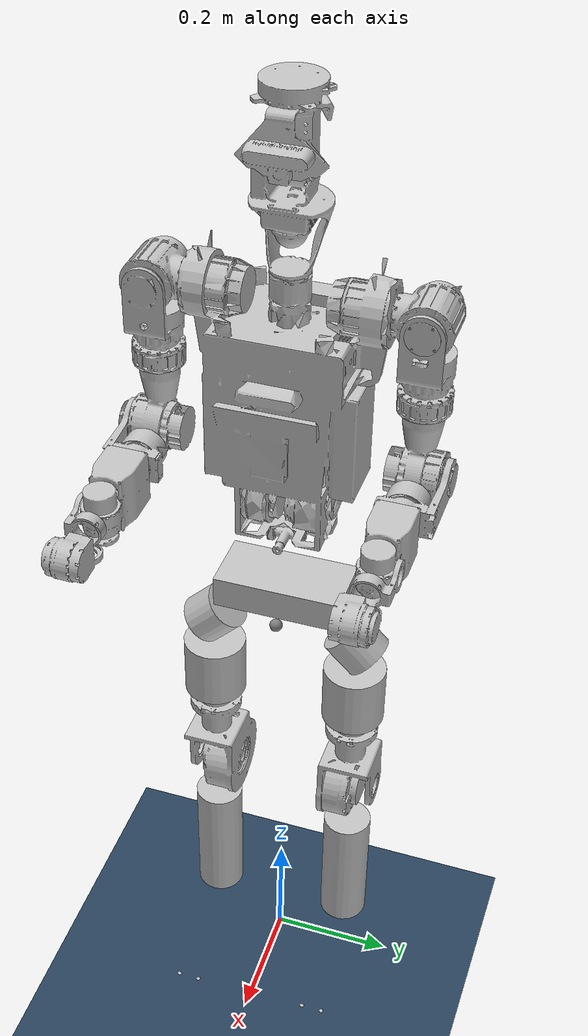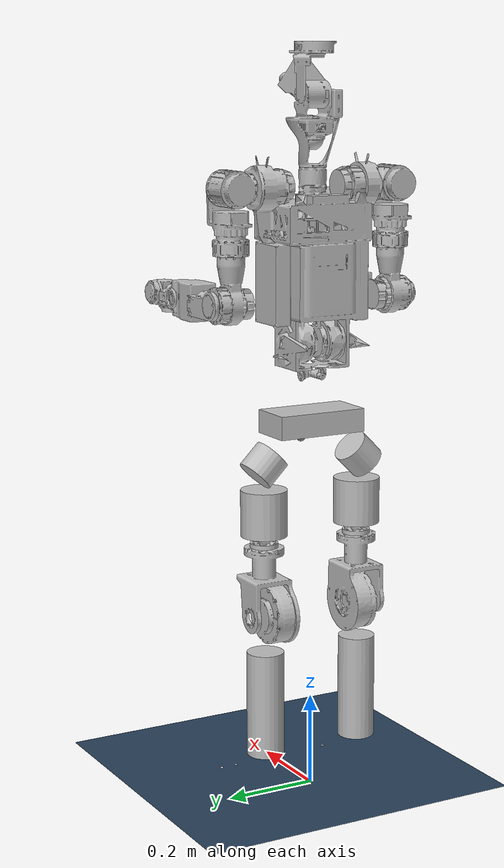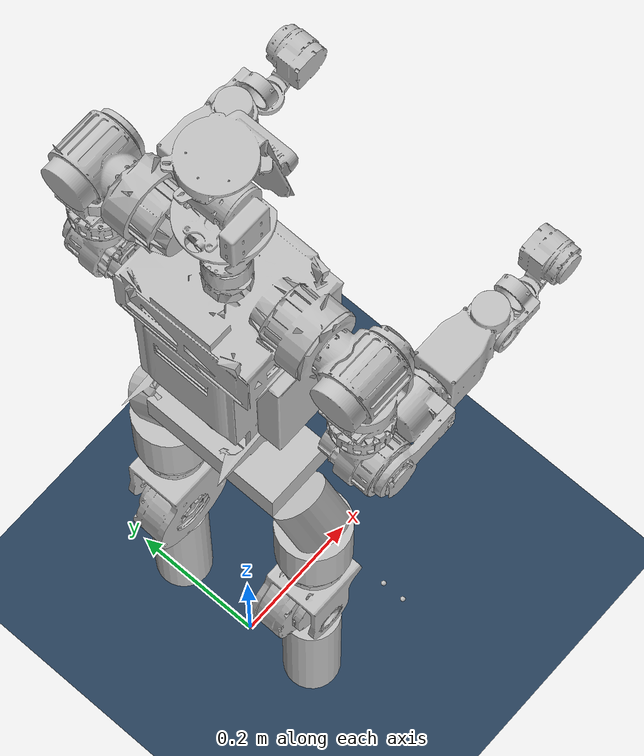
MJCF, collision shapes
<mujoco model="v1.1_Whole_u1.1_1216">
  <compiler angle="radian" meshdir="meshes_v11/"/>
  <default>
    <joint damping="0.001" armature="0.01" frictionloss="0.1"/>
  </default>

  <asset>
    <mesh name="base_link" file="base_link.STL"/>
    <mesh name="left_hip_pitch_link" file="left_hip_pitch_link.STL"/>
    <mesh name="left_hip_roll_link" file="left_hip_roll_link.STL"/>
    <mesh name="left_hip_yaw_link" file="left_hip_yaw_link.STL"/>
    <mesh name="left_knee_link" file="left_knee_link.STL"/>
    <mesh name="left_ankle_pitch_link" file="left_ankle_pitch_link.STL"/>
    <mesh name="left_ankle_roll_link" file="left_ankle_roll_link.STL"/>
    <mesh name="right_hip_pitch_link" file="right_hip_pitch_link.STL"/>
    <mesh name="right_hip_roll_link" file="right_hip_roll_link.STL"/>
    <mesh name="right_hip_yaw_link" file="right_hip_yaw_link.STL"/>
    <mesh name="right_knee_link" file="right_knee_link.STL"/>
    <mesh name="right_ankle_pitch_link" file="right_ankle_pitch_link.STL"/>
    <mesh name="right_ankle_roll_link" file="right_ankle_roll_link.STL"/>
    <mesh name="waist_yaw_link" file="waist_yaw_link.STL"/>
    <mesh name="waist_roll_link" file="waist_roll_link.STL"/>
    <mesh name="waist_pitch_link" file="waist_pitch_link.STL"/>
    <mesh name="head_yaw_link" file="head_yaw_link.STL"/>
    <mesh name="head_pitch_link" file="head_pitch_link.STL"/>
    <mesh name="left_shoulder_pitch_link" file="left_shoulder_pitch_link.STL"/>
    <mesh name="left_shoulder_roll_link" file="left_shoulder_roll_link.STL"/>
    <mesh name="left_shoulder_yaw_link" file="left_shoulder_yaw_link.STL"/>
    <mesh name="left_elbow_link" file="left_elbow_link.STL"/>
    <mesh name="left_wrist_roll_link" file="left_wrist_roll_link.STL"/>
    <mesh name="left_wrist_pitch_link" file="left_wrist_pitch_link.STL"/>
    <mesh name="left_wrist_yaw_link" file="left_wrist_yaw_link.STL"/>
    <mesh name="right_shoulder_pitch_link" file="right_shoulder_pitch_link.STL"/>
    <mesh name="right_shoulder_roll_link" file="right_shoulder_roll_link.STL"/>
    <mesh name="right_shoulder_yaw_link" file="right_shoulder_yaw_link.STL"/>
    <mesh name="right_elbow_link" file="right_elbow_link.STL"/>
    <mesh name="right_wrist_roll_link" file="right_wrist_roll_link.STL"/>
    <mesh name="right_wrist_pitch_link" file="right_wrist_pitch_link.STL"/>
    <mesh name="right_wrist_yaw_link" file="right_wrist_yaw_link.STL"/>
  </asset>

  <worldbody>
    <body name ="pelvis" pos="0 0 0.855">
      <inertial pos="-0.00011 0 -0.04947" quat="0.501261 0.501261 -0.498736 0.498736" mass="5.6115" diaginertia="0.0298001 0.0278199 0.01883"/>
      <joint name="floating_base_joint" type="free" limited="false" actuatorfrclimited="false"/>
      <geom type="mesh" contype="0" conaffinity="0" group="1" density="0" rgba="0.75294 0.75294 0.75294 1" mesh="base_link"/>
      <geom size="0.05 0.1 0.025" pos="0 0 -0.04" type="box" rgba="0.75294 0.75294 0.75294 1"/>
      <site name="imu_in_pelvis" size="0.01" pos="0.04525 0 -0.08339"/>
      <body name="left_hip_pitch_link" pos="0 0.11619 -0.12455" quat="0.923879 -0.382684 0 0">
        <inertial pos="0.0037 0.02157 -0.02824" quat="0.486733 0.868874 0.0896372 0.0106438" mass="2.2386" diaginertia="0.00516011 0.004417 0.00387289"/>
        <joint name="left_hip_pitch_joint" pos="0 0 0" axis="0 1 0" range="-2.6179 2.6179" actuatorfrcrange="-127.5 127.5"/>
        <geom type="mesh" contype="0" conaffinity="0" group="1" density="0" rgba="0.75294 0.75294 0.75294 1" mesh="left_hip_pitch_link"/>
        <geom size="0.04 0.03" quat="0.707388 0.706825 0 0" type="cylinder" rgba="0.75294 0.75294 0.75294 1"/>
        <body name="left_hip_roll_link" pos="-0.001 0.03 -0.03" quat="0.923879 0.382684 0 0">
          <inertial pos="0.0015 3e-05 -0.08423" quat="0.323453 0.628791 0.628791 0.323453" mass="1.4586" diaginertia="0.00447 0.00332581 0.00292419"/>
          <joint name="left_hip_roll_joint" pos="0 0 0" axis="1 0 0" range="-0.7854 2.3562" actuatorfrcrange="-127.5 127.5"/>
          <geom type="mesh" contype="0" conaffinity="0" group="1" density="0" rgba="0.75294 0.75294 0.75294 1" mesh="left_hip_roll_link"/>
          <geom size="0.05 0.05" pos="0 0 -0.06" type="cylinder" rgba="0.75294 0.75294 0.75294 1"/>
          <body name="left_hip_yaw_link" pos="0 0 -0.13">
            <inertial pos="-0.01065 -0.00925 -0.12007" quat="0.763801 -0.000253907 -0.082284 0.640185" mass="2.292" diaginertia="0.00965424 0.00874819 0.00286757"/>
            <joint name="left_hip_yaw_joint" pos="0 0 0" axis="0 0 1" range="-2.0944 2.0944" actuatorfrcrange="-76.5 76.5"/>
            <geom type="mesh" contype="0" conaffinity="0" group="1" density="0" rgba="0.75294 0.75294 0.75294 1" mesh="left_hip_yaw_link"/>
            <geom type="mesh" rgba="0.75294 0.75294 0.75294 1" mesh="left_hip_yaw_link"/>
            <body name="left_knee_link" pos="-0.015 0 -0.151">
              <inertial pos="0.00377 -0.00224 -0.13833" quat="0.999955 0.0019807 0.0092788 -0.000540902" mass="1.7311" diaginertia="0.00990278 0.00937012 0.0018171"/>
              <joint name="left_knee_joint" pos="0 0 0" axis="0 1 0" range="0 2.0944" actuatorfrcrange="-127.5 127.5"/>
              <geom type="mesh" contype="0" conaffinity="0" group="1" density="0" rgba="0.75294 0.75294 0.75294 1" mesh="left_knee_link"/>
              <geom size="0.04 0.115" pos="0.01 0 -0.2" type="cylinder" rgba="0.75294 0.75294 0.75294 1"/>
              <body name="left_ankle_pitch_link" pos="0.015 -0.002 -0.339">
                <inertial pos="-0.0023511 -0.0004785 -0.0069164" quat="0.707107 0.707107 0 0" mass="0.081064" diaginertia="2e-05 2e-05 1e-05"/>
                <joint name="left_ankle_pitch_joint" pos="0 0 0" axis="0 1 0" range="-0.9599 0.2618" actuatorfrcrange="-45.9 45.9"/>
                <geom type="mesh" contype="0" conaffinity="0" group="1" density="0" rgba="0.75294 0.75294 0.75294 1" mesh="left_ankle_pitch_link"/>
                <body name="left_ankle_roll_link" pos="0 0 -0.015">
                  <inertial pos="0.04469 -3.2121e-05 -0.035309" quat="0 0.67828 0 0.734803" mass="0.83613" diaginertia="0.00428404 0.00421 0.000515962"/>
                  <joint name="left_ankle_roll_joint" pos="0 0 0" axis="1 0 0" range="-0.1745 0.1745" actuatorfrcrange="-45.9 45.9"/>
                  <geom type="mesh" contype="0" conaffinity="0" group="1" density="0" rgba="0.75294 0.75294 0.75294 1" mesh="left_ankle_roll_link"/>
                  <geom name="left_foot1_collision" size="0.005" pos="-0.06 0.035 -0.06" rgba="0.75294 0.75294 0.75294 1"/>
                  <geom name="left_foot2_collision" size="0.005" pos="-0.06 -0.035 -0.06" rgba="0.75294 0.75294 0.75294 1"/>
                  <geom name="left_foot3_collision" size="0.005" pos="0.13 0.035 -0.06" rgba="0.75294 0.75294 0.75294 1"/>
                  <geom name="left_foot4_collision" size="0.005" pos="0.13 -0.035 -0.06" rgba="0.75294 0.75294 0.75294 1"/>
                  <geom name="left_foot5_collision" size="0.005" pos="0.17 0.018 -0.058" rgba="0.75294 0.75294 0.75294 1"/>
                  <geom name="left_foot6_collision" size="0.005" pos="0.17 -0.018 -0.058" rgba="0.75294 0.75294 0.75294 1"/>
                  <geom name="left_foot7_collision" size="0.005" pos="-0.035 0.035 -0.06" rgba="0.75294 0.75294 0.75294 1"/>
                  <geom name="left_foot8_collision" size="0.005" pos="-0.035 -0.035 -0.06" rgba="0.75294 0.75294 0.75294 1"/>
                  <geom name="left_foot9_collision" size="0.005" pos="0.06 0.035 -0.06" rgba="0.75294 0.75294 0.75294 1"/>
                  <geom name="left_foot10_collision" size="0.005" pos="0.06 -0.035 -0.06" rgba="0.75294 0.75294 0.75294 1"/>
                </body>
              </body>
            </body>
          </body>
        </body>
      </body>
      <body name="right_hip_pitch_link" pos="0 -0.11619 -0.12455" quat="0.923879 0.382684 0 0">
        <inertial pos="0.00753 -0.02164 -0.02818" quat="0.844271 0.513352 -0.0124264 -0.153365" mass="2.2312" diaginertia="0.00518704 0.00453609 0.00400687"/>
        <joint name="right_hip_pitch_joint" pos="0 0 0" axis="0 1 0" range="-2.6179 2.6179" actuatorfrcrange="-127.5 127.5"/>
        <geom type="mesh" contype="0" conaffinity="0" group="1" density="0" rgba="0.75294 0.75294 0.75294 1" mesh="right_hip_pitch_link"/>
        <geom size="0.04 0.03" quat="0.707388 0.706825 0 0" type="cylinder" rgba="0.75294 0.75294 0.75294 1"/>
        <body name="right_hip_roll_link" pos="0.0055 -0.03 -0.03" quat="0.923879 -0.382684 0 0">
          <inertial pos="0.00151 0 -0.08423" quat="0.331585 0.627369 0.622598 0.329895" mass="1.4586" diaginertia="0.00448007 0.00331924 0.00291069"/>
          <joint name="right_hip_roll_joint" pos="0 0 0" axis="1 0 0" range="-2.3562 0.7854" actuatorfrcrange="-127.5 127.5"/>
          <geom type="mesh" contype="0" conaffinity="0" group="1" density="0" rgba="0.75294 0.75294 0.75294 1" mesh="right_hip_roll_link"/>
          <geom size="0.05 0.05" pos="0 0 -0.06" type="cylinder" rgba="0.75294 0.75294 0.75294 1"/>
          <body name="right_hip_yaw_link" pos="0 0 -0.13">
            <inertial pos="-0.01065 0.00923 -0.11999" quat="0.640794 -0.0824896 -0.000401305 0.763269" mass="2.2898" diaginertia="0.00964412 0.00872874 0.00286714"/>
            <joint name="right_hip_yaw_joint" pos="0 0 0" axis="0 0 1" range="-2.0944 2.0944" actuatorfrcrange="-76.5 76.5"/>
            <geom type="mesh" contype="0" conaffinity="0" group="1" density="0" rgba="0.75294 0.75294 0.75294 1" mesh="right_hip_yaw_link"/>
            <geom type="mesh" rgba="0.75294 0.75294 0.75294 1" mesh="right_hip_yaw_link"/>
            <body name="right_knee_link" pos="-0.015 0 -0.151">
              <inertial pos="0.00355 -0.00047 -0.13985" quat="0.999943 -0.00185104 0.0104721 0.000619251" mass="1.7443" diaginertia="0.0104338 0.00991011 0.00183612"/>
              <joint name="right_knee_joint" pos="0 0 0" axis="0 1 0" range="0 2.0944" actuatorfrcrange="-127.5 127.5"/>
              <geom type="mesh" contype="0" conaffinity="0" group="1" density="0" rgba="0.75294 0.75294 0.75294 1" mesh="right_knee_link"/>
              <geom size="0.04 0.115" pos="0.01 0 -0.2" type="cylinder" rgba="0.75294 0.75294 0.75294 1"/>
              <body name="right_ankle_pitch_link" pos="0.015 -0.0007 -0.339">
                <inertial pos="-0.00281 0.00057 -0.008265" mass="0.06784" diaginertia="1e-05 1e-05 1e-05"/>
                <joint name="right_ankle_pitch_joint" pos="0 0 0" axis="0 1 0" range="-0.9599 0.2618" actuatorfrcrange="-45.9 45.9"/>
                <geom type="mesh" contype="0" conaffinity="0" group="1" density="0" rgba="0.75294 0.75294 0.75294 1" mesh="right_ankle_pitch_link"/>
                <body name="right_ankle_roll_link" pos="0 0 -0.015">
                  <inertial pos="0.044949 3.2367e-05 -0.03559" quat="0 0.679318 0 0.733844" mass="0.82952" diaginertia="0.00428241 0.0042 0.000507588"/>
                  <joint name="right_ankle_roll_joint" pos="0 0 0" axis="1 0 0" range="-0.1745 0.1745" actuatorfrcrange="-45.9 45.9"/>
                  <geom type="mesh" contype="0" conaffinity="0" group="1" density="0" rgba="0.75294 0.75294 0.75294 1" mesh="right_ankle_roll_link"/>
                  <geom name="right_foot1_collision" size="0.005" pos="-0.06 0.035 -0.06" rgba="0.75294 0.75294 0.75294 1"/>
                  <geom name="right_foot2_collision" size="0.005" pos="-0.06 -0.035 -0.06" rgba="0.75294 0.75294 0.75294 1"/>
                  <geom name="right_foot3_collision" size="0.005" pos="0.13 0.035 -0.06" rgba="0.75294 0.75294 0.75294 1"/>
                  <geom name="right_foot4_collision" size="0.005" pos="0.13 -0.035 -0.06" rgba="0.75294 0.75294 0.75294 1"/>
                  <geom name="right_foot5_collision" size="0.005" pos="0.17 0.018 -0.058" rgba="0.75294 0.75294 0.75294 1"/>
                  <geom name="right_foot6_collision" size="0.005" pos="0.17 -0.018 -0.058" rgba="0.75294 0.75294 0.75294 1"/>
                  <geom name="right_foot7_collision" size="0.005" pos="-0.035 0.035 -0.06" rgba="0.75294 0.75294 0.75294 1"/>
                  <geom name="right_foot8_collision" size="0.005" pos="-0.035 -0.035 -0.06" rgba="0.75294 0.75294 0.75294 1"/>
                  <geom name="right_foot9_collision" size="0.005" pos="0.06 0.035 -0.06" rgba="0.75294 0.75294 0.75294 1"/>
                  <geom name="right_foot10_collision" size="0.005" pos="0.06 -0.035 -0.06" rgba="0.75294 0.75294 0.75294 1"/>
                </body>
              </body>
            </body>
          </body>
        </body>
      </body>
      <body name="waist_yaw_link">
        <inertial pos="-0.025004 1.113e-06 0.041503" quat="0 0.672515 0 0.740083" mass="0.22089" diaginertia="0.000462877 0.00036 0.000147123"/>
        <joint name="waist_yaw_joint" pos="0 0 0" axis="0 0 1" range="-1.5708 1.5708" actuatorfrcrange="-76.5 76.5"/>
        <geom type="mesh" contype="0" conaffinity="0" group="1" density="0" rgba="0.75294 0.75294 0.75294 1" mesh="waist_yaw_link"/>
        <body name="waist_roll_link" pos="0 0 0.0615">
          <inertial pos="1.117e-08 2.7353e-09 -1.6907e-05" quat="0.5 0.5 -0.5 0.5" mass="0.044984" diaginertia="2e-05 1e-05 1e-05"/>
          <joint name="waist_roll_joint" pos="0 0 0" axis="1 0 0" range="-0.1745 0.1745" actuatorfrcrange="-51 51"/>
          <geom type="mesh" contype="0" conaffinity="0" group="1" density="0" rgba="0.75294 0.75294 0.75294 1" mesh="waist_roll_link"/>
          <geom type="mesh" rgba="0.75294 0.75294 0.75294 1" mesh="waist_roll_link"/>
          <body name="torso_link">
            <inertial pos="-0.0051034 0.000108452 0.256375" quat="0.999998 -0.00112233 0.000909489 -0.00115481" mass="17.2838" diaginertia="0.366906 0.319213 0.0998776"/>
            <joint name="waist_pitch_joint" pos="0 0 0" axis="0 1 0" range="-0.3491 0.6891" actuatorfrcrange="-51 51"/>
            <geom type="mesh" contype="0" conaffinity="0" group="1" density="0" rgba="0.75294 0.75294 0.75294 1" mesh="waist_pitch_link"/>
            <geom type="mesh" rgba="0.75294 0.75294 0.75294 1" mesh="waist_pitch_link"/>
            <geom pos="0 0 0.4375" type="mesh" contype="0" conaffinity="0" group="1" density="0" rgba="0.75294 0.75294 0.75294 1" mesh="head_yaw_link"/>
            <geom pos="0 0 0.4375" type="mesh" rgba="0.75294 0.75294 0.75294 1" mesh="head_yaw_link"/>
            <geom pos="0 0 0.5795" type="mesh" contype="0" conaffinity="0" group="1" density="0" rgba="0.75294 0.75294 0.75294 1" mesh="head_pitch_link"/>
            <geom pos="0 0 0.5795" type="mesh" rgba="0.75294 0.75294 0.75294 1" mesh="head_pitch_link"/>
            <body name="left_shoulder_pitch_link" pos="0 0.1446 0.3935">
              <inertial pos="0.00566 0.04522 0" quat="0.5 0.5 -0.5 0.5" mass="0.81088" diaginertia="0.0006 0.00057 0.00057"/>
              <joint name="left_shoulder_pitch_joint" pos="0 0 0" axis="0 1 0" range="-2.61799 2.61799" actuatorfrcrange="-68 68"/>
              <geom type="mesh" contype="0" conaffinity="0" group="1" density="0" rgba="0.75294 0.75294 0.75294 1" mesh="left_shoulder_pitch_link"/>
              <geom type="mesh" rgba="0.75294 0.75294 0.75294 1" mesh="left_shoulder_pitch_link"/>
              <body name="left_shoulder_roll_link" pos="0 0.047 0">
                <inertial pos="0.00416 6e-05 -0.0973" quat="0.688191 -0.16246 -0.16246 0.688191" mass="0.88662" diaginertia="0.00142 0.00141 0.00071"/>
                <joint name="left_shoulder_roll_joint" pos="0 0 0" axis="1 0 0" range="-0.08727 3.22832" actuatorfrcrange="-68 68"/>
                <geom type="mesh" contype="0" conaffinity="0" group="1" density="0" rgba="0.75294 0.75294 0.75294 1" mesh="left_shoulder_roll_link"/>
                <geom type="mesh" rgba="0.75294 0.75294 0.75294 1" mesh="left_shoulder_roll_link"/>
                <body name="left_shoulder_yaw_link" pos="-0.00072034 0 -0.1346">
                  <inertial pos="0.00627 0.00767 -0.09172" quat="0.839799 -0.021424 0.0801177 0.536525" mass="0.99118" diaginertia="0.00142862 0.00137919 0.000772188"/>
                  <joint name="left_shoulder_yaw_joint" pos="0 0 0" axis="0 0 1" range="-2.61799 2.61799" actuatorfrcrange="-68 68"/>
                  <geom type="mesh" contype="0" conaffinity="0" group="1" density="0" rgba="0.75294 0.75294 0.75294 1" mesh="left_shoulder_yaw_link"/>
                  <geom type="mesh" rgba="0.75294 0.75294 0.75294 1" mesh="left_shoulder_yaw_link"/>
                  <body name="left_elbow_link" pos="0.0075 0 -0.1019">
                    <inertial pos="0.08139 0.01068 -0.00849" quat="-0.0733141 0.637647 0.284259 0.7122" mass="0.53702" diaginertia="0.000746424 0.000683432 0.000250144"/>
                    <joint name="left_elbow_joint" pos="0 0 0" axis="0 1 0" range="-0.6981 3.3161" actuatorfrcrange="-68 68"/>
                    <geom type="mesh" contype="0" conaffinity="0" group="1" density="0" rgba="0.75294 0.75294 0.75294 1" mesh="left_elbow_link"/>
                    <geom type="mesh" rgba="0.75294 0.75294 0.75294 1" mesh="left_elbow_link"/>
                    <body name="left_wrist_roll_link" pos="0.1 0.0019 -0.009">
                      <inertial pos="0.08529 0.00512 -4e-05" quat="0.0551058 0.704956 -0.0551058 0.704956" mass="0.67942" diaginertia="0.00115 0.00107573 0.00042427"/>
                      <joint name="left_wrist_roll_joint" pos="0 0 0" axis="1 0 0" range="-2.61799 2.61799" actuatorfrcrange="-9.775 9.775"/>
                      <geom type="mesh" contype="0" conaffinity="0" group="1" density="0" rgba="0.75294 0.75294 0.75294 1" mesh="left_wrist_roll_link"/>
                      <geom type="mesh" rgba="0.75294 0.75294 0.75294 1" mesh="left_wrist_roll_link"/>
                      <body name="left_wrist_pitch_link" pos="0.1135 0 0">
                        <inertial pos="0.05147 0.00191 0.00656" quat="0.500001 0.0736261 0.747857 0.43045" mass="0.38948" diaginertia="0.000197146 0.000185535 0.000127318"/>
                        <joint name="left_wrist_pitch_joint" pos="0 0 0" axis="0 1 0" range="-1.5708 1.65806" actuatorfrcrange="-9.775 9.775"/>
                        <geom type="mesh" contype="0" conaffinity="0" group="1" density="0" rgba="0.75294 0.75294 0.75294 1" mesh="left_wrist_pitch_link"/>
                        <geom type="mesh" rgba="0.75294 0.75294 0.75294 1" mesh="left_wrist_pitch_link"/>
                        <body name="left_wrist_yaw_link" pos="0.054 0 0">
                          <inertial pos="0.11315 -0.00842 0.01032" quat="0.67036 0.316777 0.568741 0.356095" mass="0.54499" diaginertia="0.00187489 0.00149078 0.000564333"/>
                          <joint name="left_wrist_yaw_joint" pos="0 0 0" axis="0 0 1" range="-1.65806 1.48353" actuatorfrcrange="-9.775 9.775"/>
                          <geom type="mesh" contype="0" conaffinity="0" group="1" density="0" rgba="0.75294 0.75294 0.75294 1" mesh="left_wrist_yaw_link"/>
                          <geom type="mesh" rgba="0.75294 0.75294 0.75294 1" mesh="left_wrist_yaw_link"/>
                        </body>
                      </body>
                    </body>
                  </body>
                </body>
              </body>
            </body>
            <body name="right_shoulder_pitch_link" pos="0 -0.1446 0.3935">
              <inertial pos="0.00548 -0.04522 0" quat="0.5 0.5 -0.5 0.5" mass="0.80733" diaginertia="0.00059 0.00057 0.00056"/>
              <joint name="right_shoulder_pitch_joint" pos="0 0 0" axis="0 1 0" range="-2.61799 2.61799" actuatorfrcrange="-68 68"/>
              <geom type="mesh" contype="0" conaffinity="0" group="1" density="0" rgba="0.75294 0.75294 0.75294 1" mesh="right_shoulder_pitch_link"/>
              <geom type="mesh" rgba="0.75294 0.75294 0.75294 1" mesh="right_shoulder_pitch_link"/>
              <body name="right_shoulder_roll_link" pos="0 -0.047 0">
                <inertial pos="0.00427 -7e-05 -0.09705" quat="0.973249 0 -0.229753 0" mass="0.88811" diaginertia="0.00145 0.00145 0.0007"/>
                <joint name="right_shoulder_roll_joint" pos="0 0 0" axis="1 0 0" range="-3.22832 0.08727" actuatorfrcrange="-68 68"/>
                <geom type="mesh" contype="0" conaffinity="0" group="1" density="0" rgba="0.75294 0.75294 0.75294 1" mesh="right_shoulder_roll_link"/>
                <geom type="mesh" rgba="0.75294 0.75294 0.75294 1" mesh="right_shoulder_roll_link"/>
                <body name="right_shoulder_yaw_link" pos="-0.00072034 0 -0.1346">
                  <inertial pos="0.00626 -0.00767 -0.09172" quat="0.536525 0.0801177 -0.021424 0.839799" mass="0.99118" diaginertia="0.00142862 0.00137919 0.000772188"/>
                  <joint name="right_shoulder_yaw_joint" pos="0 0 0" axis="0 0 1" range="-2.61799 2.61799" actuatorfrcrange="-68 68"/>
                  <geom type="mesh" contype="0" conaffinity="0" group="1" density="0" rgba="0.75294 0.75294 0.75294 1" mesh="right_shoulder_yaw_link"/>
                  <geom type="mesh" rgba="0.75294 0.75294 0.75294 1" mesh="right_shoulder_yaw_link"/>
                  <body name="right_elbow_link" pos="0.0075 0 -0.1019">
                    <inertial pos="0.08085 -0.01096 -0.00843" quat="0.0798348 0.640239 -0.279565 0.71103" mass="0.54056" diaginertia="0.000776066 0.000709934 0.000254001"/>
                    <joint name="right_elbow_joint" pos="0 0 0" axis="0 1 0" range="-0.6981 3.3161" actuatorfrcrange="-68 68"/>
                    <geom type="mesh" contype="0" conaffinity="0" group="1" density="0" rgba="0.75294 0.75294 0.75294 1" mesh="right_elbow_link"/>
                    <geom type="mesh" rgba="0.75294 0.75294 0.75294 1" mesh="right_elbow_link"/>
                    <body name="right_wrist_roll_link" pos="0.1 -0.0019 -0.009">
                      <inertial pos="0.08528 -0.00514 -5e-05" quat="-0.0551058 0.704956 0.0551058 0.704956" mass="0.67942" diaginertia="0.00115 0.00107573 0.00042427"/>
                      <joint name="right_wrist_roll_joint" pos="0 0 0" axis="1 0 0" range="-2.61799 2.61799" actuatorfrcrange="-9.775 9.775"/>
                      <geom type="mesh" contype="0" conaffinity="0" group="1" density="0" rgba="0.75294 0.75294 0.75294 1" mesh="right_wrist_roll_link"/>
                      <geom type="mesh" rgba="0.75294 0.75294 0.75294 1" mesh="right_wrist_roll_link"/>
                      <body name="right_wrist_pitch_link" pos="0.1135 0 0">
                        <inertial pos="0.05147 -0.00191 0.00656" quat="0.43045 0.747857 0.0736261 0.500001" mass="0.38948" diaginertia="0.000197146 0.000185535 0.000127318"/>
                        <joint name="right_wrist_pitch_joint" pos="0 0 0" axis="0 1 0" range="-1.5708 1.65806" actuatorfrcrange="-9.775 9.775"/>
                        <geom type="mesh" contype="0" conaffinity="0" group="1" density="0" rgba="0.75294 0.75294 0.75294 1" mesh="right_wrist_pitch_link"/>
                        <geom type="mesh" rgba="0.75294 0.75294 0.75294 1" mesh="right_wrist_pitch_link"/>
                        <body name="right_wrist_yaw_link" pos="0.054 0 0">
                          <inertial pos="0.11316 0.00842 0.01033" quat="0.356095 0.568741 0.316777 0.67036" mass="0.54499" diaginertia="0.00187489 0.00149078 0.000564333"/>
                          <joint name="right_wrist_yaw_joint" pos="0 0 0" axis="0 0 1" range="-1.65806 1.48353" actuatorfrcrange="-9.775 9.775"/>
                          <geom type="mesh" contype="0" conaffinity="0" group="1" density="0" rgba="0.75294 0.75294 0.75294 1" mesh="right_wrist_yaw_link"/>
                          <geom type="mesh" rgba="0.75294 0.75294 0.75294 1" mesh="right_wrist_yaw_link"/>
                        </body>
                      </body>
                    </body>
                  </body>
                </body>
              </body>
            </body>
          </body>
        </body>
      </body>
    </body>
  </worldbody>
  <contact>
    <exclude body1="left_elbow_link" body2="left_wrist_pitch_link"/>
    <exclude body1="right_elbow_link" body2="right_wrist_pitch_link"/>
    <exclude body1="pelvis" body2="right_hip_roll_link"/>
    <exclude body1="pelvis" body2="left_hip_roll_link"/>
  </contact>
  <sensor>
    <gyro name="imu_ang_vel" site="imu_in_pelvis"/>
    <velocimeter name="imu_lin_vel" site="imu_in_pelvis"/>
    <accelerometer name="imu_lin_acc" site="imu_in_pelvis"/>
    <subtreeangmom name="root_angmom" body="pelvis"/>
  </sensor>

  <actuator>
    <motor name="left_hip_pitch_joint" joint="left_hip_pitch_joint"/>
    <motor name="left_hip_roll_joint" joint="left_hip_roll_joint"/>
    <motor name="left_hip_yaw_joint" joint="left_hip_yaw_joint"/>
    <motor name="left_knee_joint" joint="left_knee_joint"/>
    <motor name="left_ankle_pitch_joint" joint="left_ankle_pitch_joint"/>
    <motor name="left_ankle_roll_joint" joint="left_ankle_roll_joint"/>
    <motor name="right_hip_pitch_joint" joint="right_hip_pitch_joint"/>
    <motor name="right_hip_roll_joint" joint="right_hip_roll_joint"/>
    <motor name="right_hip_yaw_joint" joint="right_hip_yaw_joint"/>
    <motor name="right_knee_joint" joint="right_knee_joint"/>
    <motor name="right_ankle_pitch_joint" joint="right_ankle_pitch_joint"/>
    <motor name="right_ankle_roll_joint" joint="right_ankle_roll_joint"/>
    <motor name="waist_yaw_joint" joint="waist_yaw_joint"/>
    <motor name="waist_roll_joint" joint="waist_roll_joint"/>
    <motor name="waist_pitch_joint" joint="waist_pitch_joint"/>
    <motor name="left_shoulder_pitch_joint" joint="left_shoulder_pitch_joint"/>
    <motor name="left_shoulder_roll_joint" joint="left_shoulder_roll_joint"/>
    <motor name="left_shoulder_yaw_joint" joint="left_shoulder_yaw_joint"/>
    <motor name="left_elbow_joint" joint="left_elbow_joint"/>
    <motor name="left_wrist_roll_joint" joint="left_wrist_roll_joint"/>
    <motor name="left_wrist_pitch_joint" joint="left_wrist_pitch_joint"/>
    <motor name="left_wrist_yaw_joint" joint="left_wrist_yaw_joint"/>
    <motor name="right_shoulder_pitch_joint" joint="right_shoulder_pitch_joint"/>
    <motor name="right_shoulder_roll_joint" joint="right_shoulder_roll_joint"/>
    <motor name="right_shoulder_yaw_joint" joint="right_shoulder_yaw_joint"/>
    <motor name="right_elbow_joint" joint="right_elbow_joint"/>
    <motor name="right_wrist_roll_joint" joint="right_wrist_roll_joint"/>
    <motor name="right_wrist_pitch_joint" joint="right_wrist_pitch_joint"/>
    <motor name="right_wrist_yaw_joint" joint="right_wrist_yaw_joint"/>
  </actuator>

  <statistic center="1.0 0.7 1.0" extent="0.8"/>

  <visual>
    <headlight diffuse="0.6 0.6 0.6" ambient="0.1 0.1 0.1" specular="0.9 0.9 0.9"/>
    <rgba haze="0.15 0.25 0.35 1"/>
    <global azimuth="-140" elevation="-20"/>
  </visual>

  <asset>
    <texture type="skybox" builtin="flat" rgb1="0 0 0" rgb2="0 0 0" width="512" height="3072"/>
    <texture type="2d" name="groundplane" builtin="checker" mark="edge" rgb1="0.2 0.3 0.4" rgb2="0.1 0.2 0.3" markrgb="0.8 0.8 0.8" width="300" height="300"/>
    <material name="groundplane" texture="groundplane" texuniform="true" texrepeat="5 5" reflectance="0.2"/>
  </asset>

  <worldbody>
    <light pos="1 0 3.5" dir="0 0 -1" directional="true"/>
    <geom name="floor" size="0 0 0.05" type="plane" material="groundplane"/>
  </worldbody>
  <keyframe>
  <!-- # squta -->

  <key name="home"
  	qpos="
  	0 0 0.855
  	1 0 0 0
  	-0.38 0.0 -0.25 0.5 -0.25 0.0
    -0.38 0.0 0.25 0.5 -0.25 0.0
    0.0 0.0 0.0
    0.2 0.2 0.0 1.0 0.0 0.0 0.0
    0.2 -0.2 0.0 1.0 0.0 0.0 0.0"/>
  </keyframe>

</mujoco>
